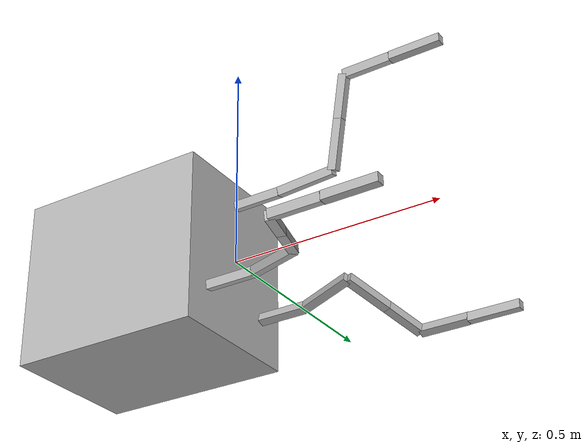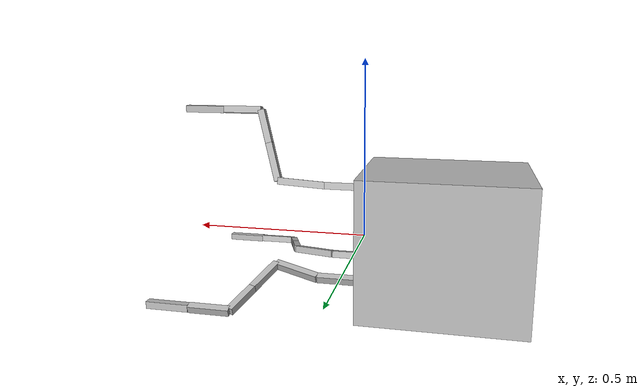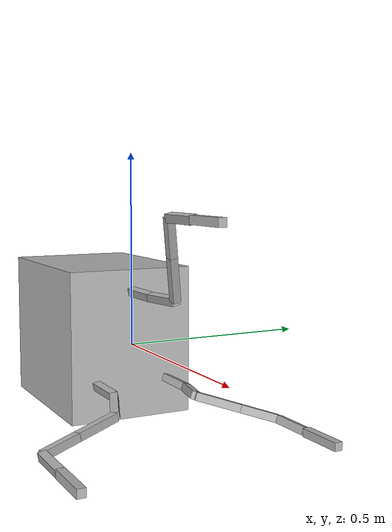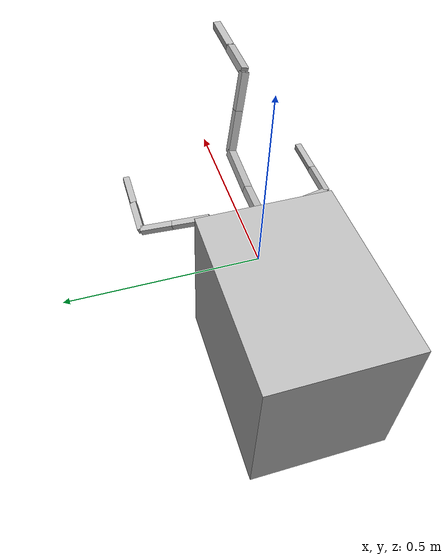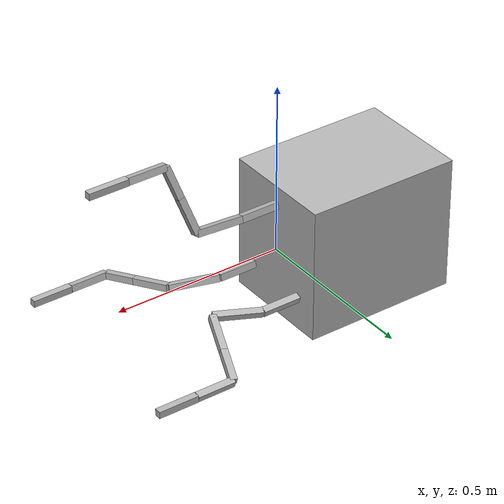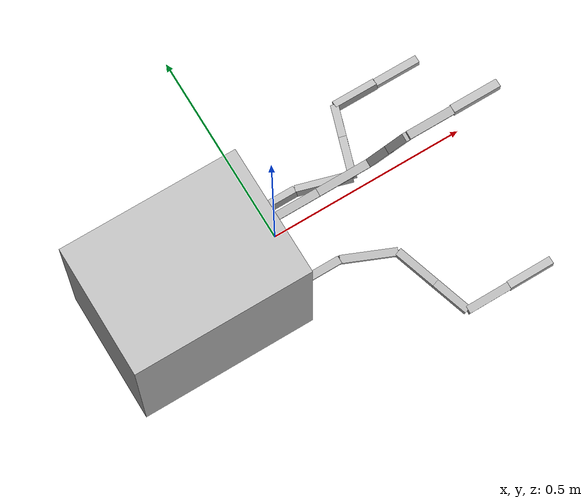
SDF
<?xml version="1.0" ?>
<sdf version="1.5">
<model name="four_bar_sdf">
<pose>0 0 0 0 0 0</pose>
<self_collide>true</self_collide>
<link name="linkROV">
<pose>-0.2286 0 0 0 0 0</pose>
<inertial>
<mass>1.0</mass>
<inertia>
<ixx>0.0227</ixx>
<iyy>0.0306</iyy>
<izz>0.0269</izz>
<ixy>0.0</ixy>
<ixz>0.0</ixz>
<iyz>0.0</iyz>
</inertia>
</inertial>
<collision name="linkROV_collision">
<geometry>
<box>
<size>0.4572 0.33805 0.39785</size>
</box>
</geometry>
</collision>
<visual name="linkROV_visual">
<geometry>
<box>
<size>0.4572 0.33805 0.39785</size>
</box>
</geometry>
<material>
<color rgba="0.3 0.3 0.3 1.0"/>
</material>
</visual>
</link>
<link name="arm1link1">
<pose>0.05750000 0.10000000 -0.10000000 -0.32302917 -0.00000000 0.00000000 </pose>
<inertial>
<mass>0.575</mass>
<inertia>
<ixx>3.8333e-05</ixx>
<iyy>6.5286e-04</iyy>
<izz>6.5286e-04</izz>
<ixy>0.0</ixy>
<ixz>0.0</ixz>
<iyz>0.0</iyz>
</inertia>
</inertial>
<collision name="arm1link1_collision">
<geometry>
<box>
<size>0.115 0.02 0.02</size>
</box>
</geometry>
</collision>
<visual name="arm1link1_visual">
<geometry>
<box>
<size>0.115 0.02 0.02</size>
</box>
</geometry>
<material>
<color rgba="0.3 0.3 0.3 1.0"/>
</material>
</visual>
</link>
<link name="arm1link2">
<pose>0.18116221 0.07832274 -0.09274344 -0.30643533 -0.10385176 -0.31661609 </pose>
<inertial>
<mass>0.700</mass>
<inertia>
<ixx>4.6667e-05</ixx>
<iyy>1.1667e-03</iyy>
<izz>1.1667e-03</izz>
<ixy>0.0</ixy>
<ixz>0.0</ixz>
<iyz>0.0</iyz>
</inertia>
</inertial>
<collision name="arm1link2_collision">
<geometry>
<box>
<size>0.140 0.02 0.02</size>
</box>
</geometry>
</collision>
<visual name="arm1link2_visual">
<geometry>
<box>
<size>0.140 0.02 0.02</size>
</box>
</geometry>
<material>
<color rgba="0.3 0.3 0.3 1.0"/>
</material>
</visual>
</link>
<link name="arm1link3">
<pose>0.26580329 0.10827905 -0.10277145 -0.10716841 0.30532305 1.22711468 </pose>
<inertial>
<mass>0.575</mass>
<inertia>
<ixx>3.8333e-05</ixx>
<iyy>6.5286e-04</iyy>
<izz>6.5286e-04</izz>
<ixy>0.0</ixy>
<ixz>0.0</ixz>
<iyz>0.0</iyz>
</inertia>
</inertial>
<collision name="arm1link3_collision">
<geometry>
<box>
<size>0.115 0.02 0.02</size>
</box>
</geometry>
</collision>
<visual name="arm1link3_visual">
<geometry>
<box>
<size>0.115 0.02 0.02</size>
</box>
</geometry>
<material>
<color rgba="0.3 0.3 0.3 1.0"/>
</material>
</visual>
</link>
<link name="arm1link4">
<pose>0.30035072 0.20481137 -0.13508609 -0.10784085 0.30532305 1.22711468 </pose>
<inertial>
<mass>0.500</mass>
<inertia>
<ixx>3.3333e-05</ixx>
<iyy>4.3333e-04</iyy>
<izz>4.3333e-04</izz>
<ixy>0.0</ixy>
<ixz>0.0</ixz>
<iyz>0.0</iyz>
</inertia>
</inertial>
<collision name="arm1link4_collision">
<geometry>
<box>
<size>0.100 0.02 0.02</size>
</box>
</geometry>
</collision>
<visual name="arm1link4_visual">
<geometry>
<box>
<size>0.100 0.02 0.02</size>
</box>
</geometry>
<material>
<color rgba="0.3 0.3 0.3 1.0"/>
</material>
</visual>
</link>
<link name="arm1link5">
<pose>0.37391928 0.24969346 -0.15007196 -0.32324499 -0.00076863 -0.00028981 </pose>
<inertial>
<mass>0.575</mass>
<inertia>
<ixx>3.8333e-05</ixx>
<iyy>6.5286e-04</iyy>
<izz>6.5286e-04</izz>
<ixy>0.0</ixy>
<ixz>0.0</ixz>
<iyz>0.0</iyz>
</inertia>
</inertial>
<collision name="arm1link5_collision">
<geometry>
<box>
<size>0.115 0.02 0.02</size>
</box>
</geometry>
</collision>
<visual name="arm1link5_visual">
<geometry>
<box>
<size>0.115 0.02 0.02</size>
</box>
</geometry>
<material>
<color rgba="0.3 0.3 0.3 1.0"/>
</material>
</visual>
</link>
<link name="arm1link6">
<pose>0.49141924 0.24965940 -0.14998164 0.00041833 -0.00076863 -0.00028981 </pose>
<inertial>
<mass>0.600</mass>
<inertia>
<ixx>4.0000e-05</ixx>
<iyy>7.4000e-04</iyy>
<izz>7.4000e-04</izz>
<ixy>0.0</ixy>
<ixz>0.0</ixz>
<iyz>0.0</iyz>
</inertia>
</inertial>
<collision name="arm1link6_collision">
<geometry>
<box>
<size>0.120 0.02 0.02</size>
</box>
</geometry>
</collision>
<visual name="arm1link6_visual">
<geometry>
<box>
<size>0.120 0.02 0.02</size>
</box>
</geometry>
<material>
<color rgba="0.3 0.3 0.3 1.0"/>
</material>
</visual>
</link>
<link name="arm2link1">
<pose>0.05750000 -0.10000000 -0.10000000 0.19673000 0.00000000 0.00000000 </pose>
<inertial>
<mass>0.575</mass>
<inertia>
<ixx>3.8333e-05</ixx>
<iyy>6.5286e-04</iyy>
<izz>6.5286e-04</izz>
<ixy>0.0</ixy>
<ixz>0.0</ixz>
<iyz>0.0</iyz>
</inertia>
</inertial>
<collision name="arm2link1_collision">
<geometry>
<box>
<size>0.115 0.02 0.02</size>
</box>
</geometry>
</collision>
<visual name="arm2link1_visual">
<geometry>
<box>
<size>0.115 0.02 0.02</size>
</box>
</geometry>
<material>
<color rgba="0.3 0.3 0.3 1.0"/>
</material>
</visual>
</link>
<link name="arm2link2">
<pose>0.17981000 -0.12594000 -0.10517000 0.18249000 0.07391300 -0.38064000 </pose>
<inertial>
<mass>0.700</mass>
<inertia>
<ixx>4.6667e-05</ixx>
<iyy>1.1667e-03</iyy>
<izz>1.1667e-03</izz>
<ixy>0.0</ixy>
<ixz>0.0</ixz>
<iyz>0.0</iyz>
</inertia>
</inertial>
<collision name="arm2link2_collision">
<geometry>
<box>
<size>0.140 0.02 0.02</size>
</box>
</geometry>
</collision>
<visual name="arm2link2_visual">
<geometry>
<box>
<size>0.140 0.02 0.02</size>
</box>
</geometry>
<material>
<color rgba="0.3 0.3 0.3 1.0"/>
</material>
</visual>
</link>
<link name="arm2link3">
<pose>0.26397000 -0.20498000 -0.12092000 0.06694000 0.18513000 -1.22150000 </pose>
<inertial>
<mass>0.575</mass>
<inertia>
<ixx>3.8333e-05</ixx>
<iyy>6.5286e-04</iyy>
<izz>6.5286e-04</izz>
<ixy>0.0</ixy>
<ixz>0.0</ixz>
<iyz>0.0</iyz>
</inertia>
</inertial>
<collision name="arm2link3_collision">
<geometry>
<box>
<size>0.115 0.02 0.02</size>
</box>
</geometry>
</collision>
<visual name="arm2link3_visual">
<geometry>
<box>
<size>0.115 0.02 0.02</size>
</box>
</geometry>
<material>
<color rgba="0.3 0.3 0.3 1.0"/>
</material>
</visual>
</link>
<link name="arm2link4">
<pose>0.30012000 -0.30426000 -0.14071000 0.06663700 0.18513000 -1.22150000 </pose>
<inertial>
<mass>0.500</mass>
<inertia>
<ixx>3.3333e-05</ixx>
<iyy>4.3333e-04</iyy>
<izz>4.3333e-04</izz>
<ixy>0.0</ixy>
<ixz>0.0</ixz>
<iyz>0.0</iyz>
</inertia>
</inertial>
<collision name="arm2link4_collision">
<geometry>
<box>
<size>0.100 0.02 0.02</size>
</box>
</geometry>
</collision>
<visual name="arm2link4_visual">
<geometry>
<box>
<size>0.100 0.02 0.02</size>
</box>
</geometry>
<material>
<color rgba="0.3 0.3 0.3 1.0"/>
</material>
</visual>
</link>
<link name="arm2link5">
<pose>0.37444000 -0.35040000 -0.14992000 0.19663000 0.00016864 0.00061398 </pose>
<inertial>
<mass>0.575</mass>
<inertia>
<ixx>3.8333e-05</ixx>
<iyy>6.5286e-04</iyy>
<izz>6.5286e-04</izz>
<ixy>0.0</ixy>
<ixz>0.0</ixz>
<iyz>0.0</iyz>
</inertia>
</inertial>
<collision name="arm2link5_collision">
<geometry>
<box>
<size>0.115 0.02 0.02</size>
</box>
</geometry>
</collision>
<visual name="arm2link5_visual">
<geometry>
<box>
<size>0.115 0.02 0.02</size>
</box>
</geometry>
<material>
<color rgba="0.3 0.3 0.3 1.0"/>
</material>
</visual>
</link>
<link name="arm2link6">
<pose>0.49194000 -0.35033000 -0.14994000 -0.00014784 0.00016864 0.00061398 </pose>
<inertial>
<mass>0.600</mass>
<inertia>
<ixx>4.0000e-05</ixx>
<iyy>7.4000e-04</iyy>
<izz>7.4000e-04</izz>
<ixy>0.0</ixy>
<ixz>0.0</ixz>
<iyz>0.0</iyz>
</inertia>
</inertial>
<collision name="arm2link6_collision">
<geometry>
<box>
<size>0.120 0.02 0.02</size>
</box>
</geometry>
</collision>
<visual name="arm2link6_visual">
<geometry>
<box>
<size>0.120 0.02 0.02</size>
</box>
</geometry>
<material>
<color rgba="0.3 0.3 0.3 1.0"/>
</material>
</visual>
</link>
<link name="arm3link1">
<pose>0.05750000 0.00000000 0.14142000 1.80570000 0.00000000 0.00000000 </pose>
<inertial>
<mass>0.575</mass>
<inertia>
<ixx>3.8333e-05</ixx>
<iyy>6.5286e-04</iyy>
<izz>6.5286e-04</izz>
<ixy>0.0</ixy>
<ixz>0.0</ixz>
<iyz>0.0</iyz>
</inertia>
</inertial>
<collision name="arm3link1_collision">
<geometry>
<box>
<size>0.115 0.02 0.02</size>
</box>
</geometry>
</collision>
<visual name="arm3link1_visual">
<geometry>
<box>
<size>0.115 0.02 0.02</size>
</box>
</geometry>
<material>
<color rgba="0.3 0.3 0.3 1.0"/>
</material>
</visual>
</link>
<link name="arm3link2">
<pose>0.18489000 -0.00089742 0.14517000 1.80610000 -0.05358500 -0.01283900 </pose>
<inertial>
<mass>0.700</mass>
<inertia>
<ixx>4.6667e-05</ixx>
<iyy>1.1667e-03</iyy>
<izz>1.1667e-03</izz>
<ixy>0.0</ixy>
<ixz>0.0</ixz>
<iyz>0.0</iyz>
</inertia>
</inertial>
<collision name="arm3link2_collision">
<geometry>
<box>
<size>0.140 0.02 0.02</size>
</box>
</geometry>
</collision>
<visual name="arm3link2_visual">
<geometry>
<box>
<size>0.140 0.02 0.02</size>
</box>
</geometry>
<material>
<color rgba="0.3 0.3 0.3 1.0"/>
</material>
</visual>
</link>
<link name="arm3link3">
<pose>0.27134000 -0.01461300 0.20247000 2.26440000 -1.19810000 -0.65887000 </pose>
<inertial>
<mass>0.575</mass>
<inertia>
<ixx>3.8333e-05</ixx>
<iyy>6.5286e-04</iyy>
<izz>6.5286e-04</izz>
<ixy>0.0</ixy>
<ixz>0.0</ixz>
<iyz>0.0</iyz>
</inertia>
</inertial>
<collision name="arm3link3_collision">
<geometry>
<box>
<size>0.115 0.02 0.02</size>
</box>
</geometry>
</collision>
<visual name="arm3link3_visual">
<geometry>
<box>
<size>0.115 0.02 0.02</size>
</box>
</geometry>
<material>
<color rgba="0.3 0.3 0.3 1.0"/>
</material>
</visual>
</link>
<link name="arm3link4">
<pose>0.30229000 -0.03857900 0.30259000 -0.87702000 -1.19810000 -0.65887000 </pose>
<inertial>
<mass>0.500</mass>
<inertia>
<ixx>3.3333e-05</ixx>
<iyy>4.3333e-04</iyy>
<izz>4.3333e-04</izz>
<ixy>0.0</ixy>
<ixz>0.0</ixz>
<iyz>0.0</iyz>
</inertia>
</inertial>
<collision name="arm3link4_collision">
<geometry>
<box>
<size>0.100 0.02 0.02</size>
</box>
</geometry>
</collision>
<visual name="arm3link4_visual">
<geometry>
<box>
<size>0.100 0.02 0.02</size>
</box>
</geometry>
<material>
<color rgba="0.3 0.3 0.3 1.0"/>
</material>
</visual>
</link>
<link name="arm3link5">
<pose>0.37419000 -0.04972000 0.34918000 -1.33580000 -0.00039581 0.00009464 </pose>
<inertial>
<mass>0.575</mass>
<inertia>
<ixx>3.8333e-05</ixx>
<iyy>6.5286e-04</iyy>
<izz>6.5286e-04</izz>
<ixy>0.0</ixy>
<ixz>0.0</ixz>
<iyz>0.0</iyz>
</inertia>
</inertial>
<collision name="arm3link5_collision">
<geometry>
<box>
<size>0.115 0.02 0.02</size>
</box>
</geometry>
</collision>
<visual name="arm3link5_visual">
<geometry>
<box>
<size>0.115 0.02 0.02</size>
</box>
</geometry>
<material>
<color rgba="0.3 0.3 0.3 1.0"/>
</material>
</visual>
</link>
<link name="arm3link6">
<pose>0.49169000 -0.04970900 0.34923000 0.00014400 -0.00039581 0.00009464 </pose>
<inertial>
<mass>0.600</mass>
<inertia>
<ixx>4.0000e-05</ixx>
<iyy>7.4000e-04</iyy>
<izz>7.4000e-04</izz>
<ixy>0.0</ixy>
<ixz>0.0</ixz>
<iyz>0.0</iyz>
</inertia>
</inertial>
<collision name="arm3link6_collision">
<geometry>
<box>
<size>0.120 0.02 0.02</size>
</box>
</geometry>
</collision>
<visual name="arm3link6_visual">
<geometry>
<box>
<size>0.120 0.02 0.02</size>
</box>
</geometry>
<material>
<color rgba="0.3 0.3 0.3 1.0"/>
</material>
</visual>
</link>
<joint name="arm1_jointgrip" type="fixed">
<pose>0 0 0 0 0 0</pose>
<parent>world</parent>
<child>arm1link6</child>
</joint>
<joint name="arm1_joint1" type="revolute">
<pose>0 0 0 0 0 0</pose>
<parent>linkROV</parent>
<child>arm1link1</child>
<axis>
<xyz>1 0 0</xyz>
<dynamics>
<damping>0.05</damping>
<friction>0</friction>
<spring_reference>0</spring_reference>
<spring_stiffness>10.0</spring_stiffness>
</dynamics>
</axis>
</joint>
<joint name="arm1_joint2" type="revolute">
<pose>-0.07 0 0 0 0 0</pose>
<parent>arm1link1</parent>
<child>arm1link2</child>
<axis>
<xyz>0 0 1</xyz>
<dynamics>
<damping>0.05</damping>
<friction>0</friction>
<spring_reference>0</spring_reference>
<spring_stiffness>10.0</spring_stiffness>
</dynamics>
</axis>
</joint>
<joint name="arm1_joint3" type="revolute">
<pose>-0.0575 0 0 0 0 0</pose>
<parent>arm1link2</parent>
<child>arm1link3</child>
<axis>
<xyz>0 0 1</xyz>
<dynamics>
<damping>0.05</damping>
<friction>0</friction>
<spring_reference>0</spring_reference>
<spring_stiffness>10.0</spring_stiffness>
</dynamics>
</axis>
</joint>
<joint name="arm1_joint4" type="revolute">
<pose>-0.05 0 0 0 0 0</pose>
<parent>arm1link3</parent>
<child>arm1link4</child>
<axis>
<xyz>1 0 0</xyz>
<dynamics>
<damping>0.05</damping>
<friction>0</friction>
<spring_reference>0</spring_reference>
<spring_stiffness>10.0</spring_stiffness>
</dynamics>
</axis>
</joint>
<joint name="arm1_joint5" type="revolute">
<pose>-0.0575 0 0 0 0 0</pose>
<parent>arm1link4</parent>
<child>arm1link5</child>
<axis>
<xyz>0 0 1</xyz>
<dynamics>
<damping>0.05</damping>
<friction>0</friction>
<spring_reference>0</spring_reference>
<spring_stiffness>10.0</spring_stiffness>
</dynamics>
</axis>
</joint>
<joint name="arm1_joint6" type="revolute">
<pose>-0.06 0 0 0 0 0</pose>
<parent>arm1link5</parent>
<child>arm1link6</child>
<axis>
<xyz>1 0 0</xyz>
<dynamics>
<damping>0.05</damping>
<friction>0</friction>
<spring_reference>0</spring_reference>
<spring_stiffness>10.0</spring_stiffness>
</dynamics>
</axis>
</joint>
<joint name="arm2_jointgrip" type="fixed">
<pose>0 0 0 0 0 0</pose>
<parent>world</parent>
<child>arm2link6</child>
</joint>
<joint name="arm2_joint1" type="revolute">
<pose>0 0 0 0 0 0</pose>
<parent>linkROV</parent>
<child>arm2link1</child>
<axis>
<xyz>1 0 0</xyz>
<dynamics>
<damping>0.05</damping>
<friction>0</friction>
<spring_reference>0</spring_reference>
<spring_stiffness>10.0</spring_stiffness>
</dynamics>
</axis>
</joint>
<joint name="arm2_joint2" type="revolute">
<pose>-0.07 0 0 0 0 0</pose>
<parent>arm2link1</parent>
<child>arm2link2</child>
<axis>
<xyz>0 0 1</xyz>
<dynamics>
<damping>0.05</damping>
<friction>0</friction>
<spring_reference>0</spring_reference>
<spring_stiffness>10.0</spring_stiffness>
</dynamics>
</axis>
</joint>
<joint name="arm2_joint3" type="revolute">
<pose>-0.0575 0 0 0 0 0</pose>
<parent>arm2link2</parent>
<child>arm2link3</child>
<axis>
<xyz>0 0 1</xyz>
<dynamics>
<damping>0.05</damping>
<friction>0</friction>
<spring_reference>0</spring_reference>
<spring_stiffness>10.0</spring_stiffness>
</dynamics>
</axis>
</joint>
<joint name="arm2_joint4" type="revolute">
<pose>-0.05 0 0 0 0 0</pose>
<parent>arm2link3</parent>
<child>arm2link4</child>
<axis>
<xyz>1 0 0</xyz>
<dynamics>
<damping>0.05</damping>
<friction>0</friction>
<spring_reference>0</spring_reference>
<spring_stiffness>10.0</spring_stiffness>
</dynamics>
</axis>
</joint>
<joint name="arm2_joint5" type="revolute">
<pose>-0.0575 0 0 0 0 0</pose>
<parent>arm2link4</parent>
<child>arm2link5</child>
<axis>
<xyz>0 0 1</xyz>
<dynamics>
<damping>0.05</damping>
<friction>0</friction>
<spring_reference>0</spring_reference>
<spring_stiffness>10.0</spring_stiffness>
</dynamics>
</axis>
</joint>
<joint name="arm2_joint6" type="revolute">
<pose>-0.06 0 0 0 0 0</pose>
<parent>arm2link5</parent>
<child>arm2link6</child>
<axis>
<xyz>1 0 0</xyz>
<dynamics>
<damping>0.05</damping>
<friction>0</friction>
<spring_reference>0</spring_reference>
<spring_stiffness>10.0</spring_stiffness>
</dynamics>
</axis>
</joint>
<joint name="arm3_jointgrip" type="fixed">
<pose>0 0 0 0 0 0</pose>
<parent>world</parent>
<child>arm3link6</child>
</joint>
<joint name="arm3_joint1" type="revolute">
<pose>0 0 0 0 0 0</pose>
<parent>linkROV</parent>
<child>arm3link1</child>
<axis>
<xyz>1 0 0</xyz>
<dynamics>
<damping>0.05</damping>
<friction>0</friction>
<spring_reference>0</spring_reference>
<spring_stiffness>10.0</spring_stiffness>
</dynamics>
</axis>
</joint>
<joint name="arm3_joint2" type="revolute">
<pose>-0.07 0 0 0 0 0</pose>
<parent>arm3link1</parent>
<child>arm3link2</child>
<axis>
<xyz>0 0 1</xyz>
<dynamics>
<damping>0.05</damping>
<friction>0</friction>
<spring_reference>0</spring_reference>
<spring_stiffness>10.0</spring_stiffness>
</dynamics>
</axis>
</joint>
<joint name="arm3_joint3" type="revolute">
<pose>-0.0575 0 0 0 0 0</pose>
<parent>arm3link2</parent>
<child>arm3link3</child>
<axis>
<xyz>0 0 1</xyz>
<dynamics>
<damping>0.05</damping>
<friction>0</friction>
<spring_reference>0</spring_reference>
<spring_stiffness>10.0</spring_stiffness>
</dynamics>
</axis>
</joint>
<joint name="arm3_joint4" type="revolute">
<pose>-0.05 0 0 0 0 0</pose>
<parent>arm3link3</parent>
<child>arm3link4</child>
<axis>
<xyz>1 0 0</xyz>
<dynamics>
<damping>0.05</damping>
<friction>0</friction>
<spring_reference>0</spring_reference>
<spring_stiffness>10.0</spring_stiffness>
</dynamics>
</axis>
</joint>
<joint name="arm3_joint5" type="revolute">
<pose>-0.0575 0 0 0 0 0</pose>
<parent>arm3link4</parent>
<child>arm3link5</child>
<axis>
<xyz>0 0 1</xyz>
<dynamics>
<damping>0.05</damping>
<friction>0</friction>
<spring_reference>0</spring_reference>
<spring_stiffness>10.0</spring_stiffness>
</dynamics>
</axis>
</joint>
<joint name="arm3_joint6" type="revolute">
<pose>-0.06 0 0 0 0 0</pose>
<parent>arm3link5</parent>
<child>arm3link6</child>
<axis>
<xyz>1 0 0</xyz>
<dynamics>
<damping>0.05</damping>
<friction>0</friction>
<spring_reference>0</spring_reference>
<spring_stiffness>10.0</spring_stiffness>
</dynamics>
</axis>
</joint>
</model>
</sdf>
